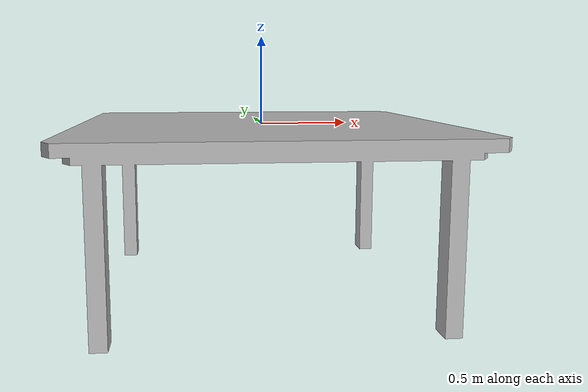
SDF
<?xml version="1.0"?>
<sdf version="1.7">
  <model name="table">
    <link name="table_body">
      <visual name="table_visual">
        <geometry>
          <mesh>
            <uri>table_extra_wide.obj</uri>
          </mesh>
        </geometry>
      </visual>
      <collision name="table_top">
        <pose> 0 0 -0.498353 0 0 0</pose>
        <geometry>
          <box>
            <size>2.1 2.1 0.996706</size>
          </box>
        </geometry>
      </collision>
    </link>
  </model>
</sdf>
